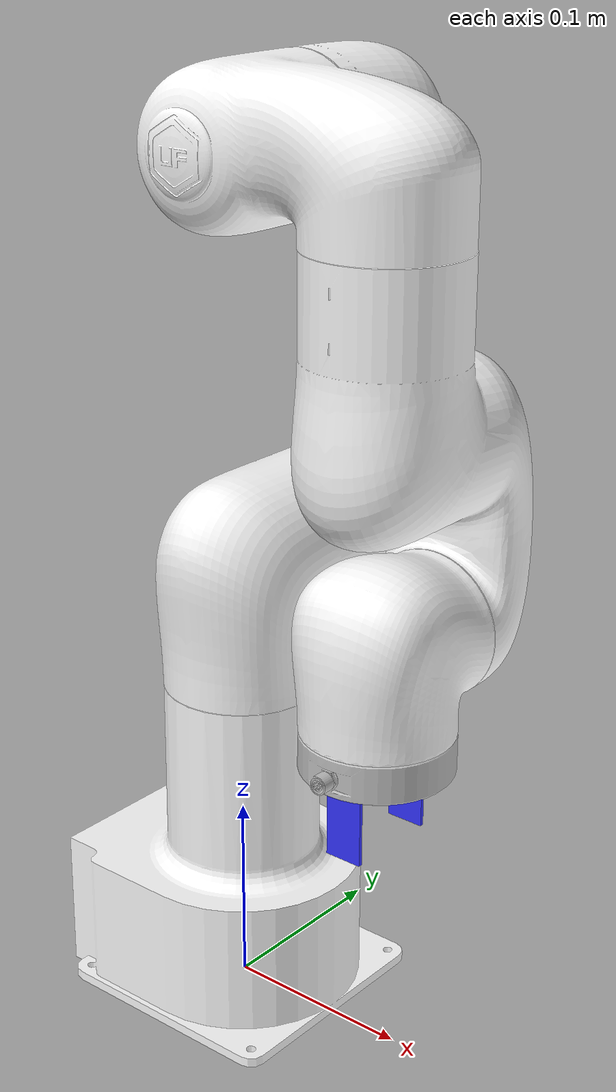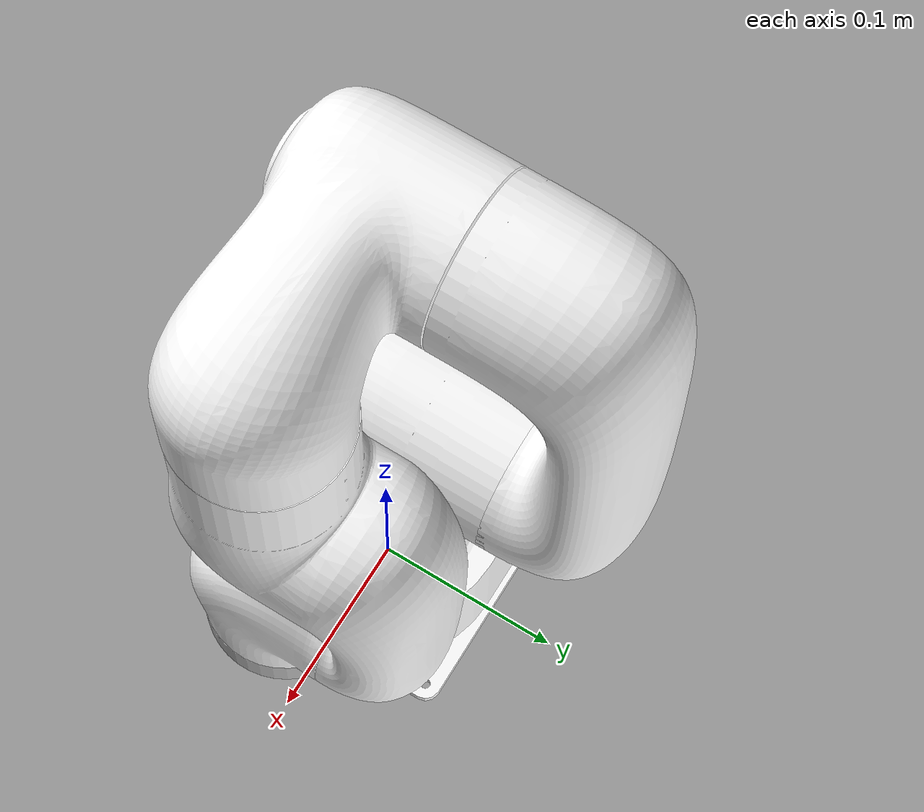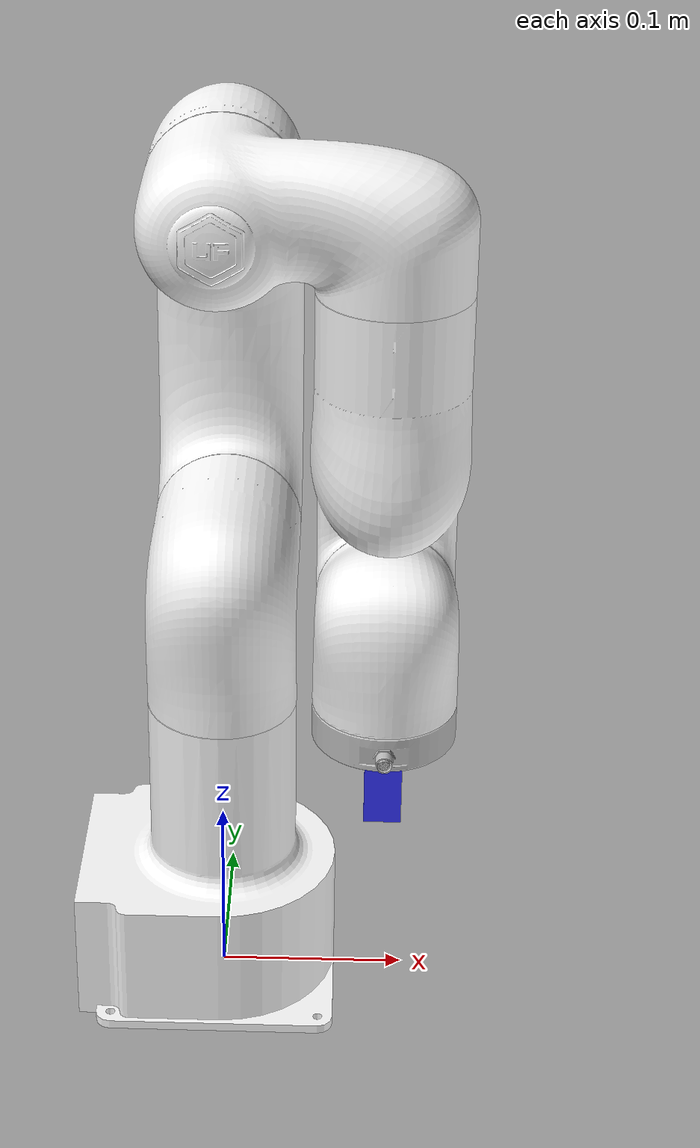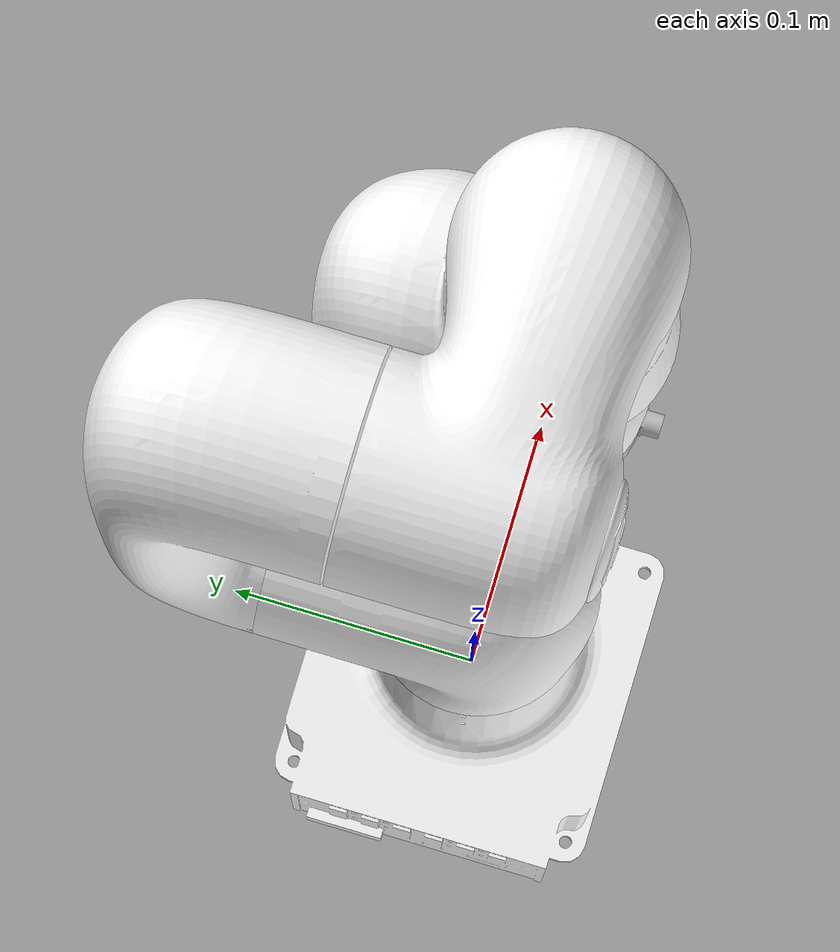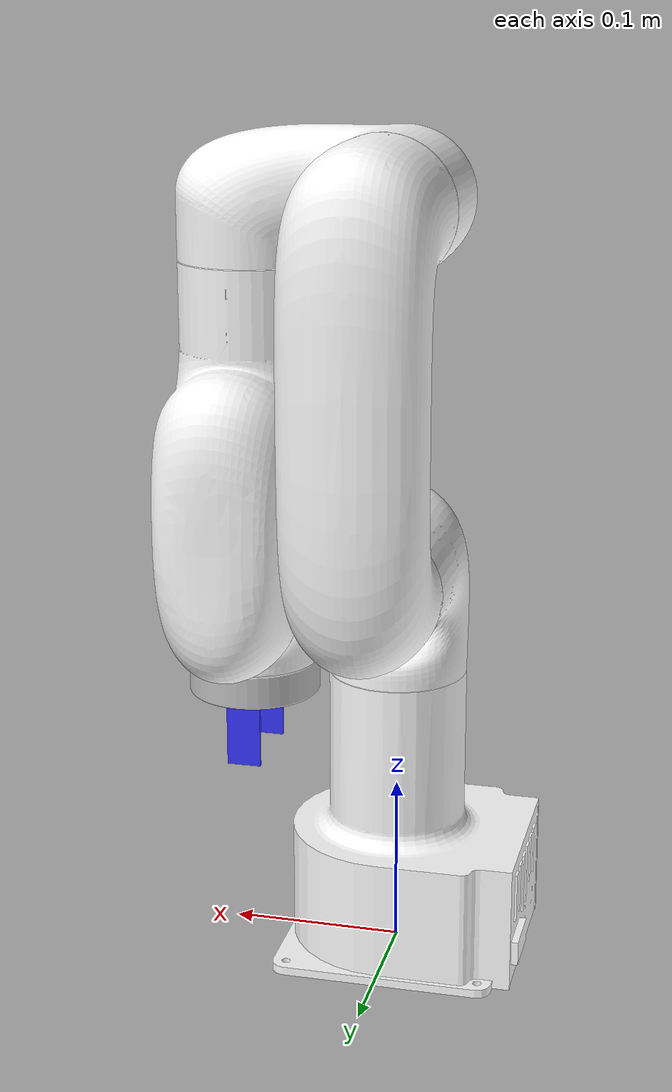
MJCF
<mujoco model="ufactory_lite6">

  <option integrator="implicitfast"/>

  <default>
    <default class="lite6" >
      <geom type="mesh"/>
      <joint axis="0 0 1" damping="1" armature="0.1"/>
      <general gaintype="fixed" biastype="affine" gainprm="2000" biasprm="0 -2000 -200"/>
      <default class="size1">
        <general forcerange="-50 50"/>
      </default>
      <default class="size2">
        <general forcerange="-32 32"/>
      </default>
      <default class="size3">
        <general forcerange="-20 20"/>
      </default>
      <default class="visual">
        <geom contype="0" conaffinity="0" group="2" material="white"/>
      </default>
      <default class="collision">
        <geom group="3" mass="0" density="0"/>
      </default>
      <site size="0.001" rgba="0.5 0.5 0.5 0.3" group="4"/>
    </default>
  </default>

  <asset>
    <material name="white" rgba="1 1 1 1"/>
    <material name="silver" rgba=".753 .753 .753 1"/>

    <mesh file="assets/ufactory_lite6/assets/visual/link_base.stl"/>
    <mesh file="assets/ufactory_lite6/assets/visual/link1.stl"/>
    <mesh file="assets/ufactory_lite6/assets/visual/link2.stl"/>
    <mesh file="assets/ufactory_lite6/assets/visual/link3.stl"/>
    <mesh file="assets/ufactory_lite6/assets/visual/link4.stl"/>
    <mesh file="assets/ufactory_lite6/assets/visual/link5.stl"/>
    <mesh file="assets/ufactory_lite6/assets/visual/link6.stl"/>
    <mesh file="assets/ufactory_lite6/assets/visual/gripper_without_head.stl"/>
    <mesh name="link_base_c"  file="assets/ufactory_lite6/assets/collision/link_base.stl"/>
    <mesh name="link1_c"      file="assets/ufactory_lite6/assets/collision/link1.stl"/>
    <mesh name="link2_c"      file="assets/ufactory_lite6/assets/collision/link2.stl"/>
    <mesh name="link3_c"      file="assets/ufactory_lite6/assets/collision/link3.stl"/>
    <mesh name="link4_c"      file="assets/ufactory_lite6/assets/collision/link4.stl"/>
    <mesh name="link5_c"      file="assets/ufactory_lite6/assets/collision/link5.stl"/>
    <mesh name="link6_c"      file="assets/ufactory_lite6/assets/collision/link6.stl"/>
    <mesh name="gripper_c"    file="assets/ufactory_lite6/assets/collision/gripper_without_head.stl"/>

  </asset>

  <worldbody>
    <body name="link_base" childclass="lite6">
      <inertial pos="-0.00829545 3.26357e-05 0.0631195" mass="1.65394" diaginertia="0 0 0"/>
      <geom class="visual" mesh="link_base"/>
      <geom class="collision" mesh="link_base_c"/>
      <body name="link1" pos="0 0 0.2435">
        <inertial pos="-0.00036 0.04195 -0.0025" quat="0.608059 0.792349 -0.0438707 0.0228718" mass="1.411"
          diaginertia="0.00145276 0.00135275 0.000853355"/>
        <joint name="joint1" /> <!-- range="-6.28319 6.28319"-->
        <geom class="visual" mesh="link1"/>
        <geom class="collision" mesh="link1_c"/>
        <body name="link2" quat="-1 1 1 1">
          <inertial pos="0.179 0 0.0584" quat="0.417561 0.571619 0.569585 0.417693" mass="1.34"
            diaginertia="0.00560971 0.0052152 0.00122018"/>
          <joint name="joint2" /> <!-- range="-2.61799 2.61799" -->
          <geom class="visual" mesh="link2"/>
          <geom class="collision" mesh="link2_c"/>
          <body name="link3" pos="0.2002 0 0" quat="-2.59734e-06 -0.707105 -0.707108 -2.59735e-06">
            <inertial pos="0.072 -0.0357 -0.001" quat="0.128259 0.662963 -0.167256 0.71837" mass="0.953"
              diaginertia="0.0018521 0.00175546 0.000703807"/>
            <joint name="joint3" /> <!--range="-0.061087 5.23599"-->
            <geom class="visual" mesh="link3"/>
            <geom class="collision" mesh="link3_c"/>
            <body name="link4" pos="0.087 -0.22761 0" quat="0.707105 0.707108 0 0">
              <inertial pos="-0.002 -0.0285 -0.0813" quat="0.975248 0.22109 0.00203498 -0.00262178" mass="1.284"
                diaginertia="0.00370503 0.00349091 0.00109586"/>
              <joint name="joint4" /> <!-- range="-6.28319 6.28319"-->
              <geom class="visual" mesh="link4"/>
              <geom class="collision" mesh="link4_c"/>
              <body name="link5" quat="1 1 0 0">
                <inertial pos="0 0.01 0.0019" quat="0.71423 0.696388 -0.0531933 0.0456997" mass="0.804"
                  diaginertia="0.000567553 0.000529266 0.000507681"/>
                <joint name="joint5" /> <!-- range="-2.1642 2.1642" -->
                <geom class="visual" mesh="link5"/>
                <geom class="collision" mesh="link5_c"/>
                <body name="link6" pos="0 0.0625 0" quat="1 -1 0 0">
                  <inertial pos="0 -0.00194 -0.0102" quat="-0.0376023 0.704057 0.0446838 0.707738" mass="0.13"
                    diaginertia="0.000148148 8.57757e-05 7.71412e-05"/>
                  <joint name="joint6" /> <!-- range="-6.28319 6.28319" -->
                  <geom class="visual" mesh="link6" material="silver"/>
                  <geom class="collision" mesh="link6_c"/>

                  <body name="gripper" pos="0 0 0.02" quat="1 0 0 1">
                    <body name="CAM" pos="0 0 -0.025" quat="0 -1 0 1">
                      <camera name="robot_cam" quat="0 1 0 1" pos="0 0 0"/>
                    </body>

                    <body name="gripper_lite_left" pos="0.025 0 0"  quat="0 0 -1 1">
                      <geom type="box" size="0.001 0.02 0.01" rgba=".2 .2 1 1" mass="0.0001"/>
                      <joint name="gripper_lite_left_joint" type="slide" axis="1 0 0" pos="0 0 0" damping="1"/>
                    </body>
                    <body name="gripper_lite_right" pos="-0.025 0 0"  quat="0 0 -1 1">
                      <geom type="box" size="0.001 0.02 0.01" rgba=".2 .2 1 1" mass="0.0001"/>
                      <joint name="gripper_lite_right_joint" type="slide" axis="1 0 0" pos="0 0 0" damping="1"/>
                    </body>

                    <site name="attachment_site"/>
                  </body>
                </body>
              </body>
            </body>
          </body>
        </body>
      </body>
    </body>
  </worldbody>

  <actuator>
    <general joint="joint1" ctrllimited="true" class="size1" ctrlrange="-6.28319 6.28319" />
    <general joint="joint2" ctrllimited="true" class="size1" ctrlrange="-2.61799 2.61799" />
    <general joint="joint3" ctrllimited="true" class="size2" ctrlrange="-0.061087 5.23599" />
    <general joint="joint4" ctrllimited="true" class="size2" ctrlrange="-6.28319 6.28319" />
    <general joint="joint5" ctrllimited="true" class="size2" ctrlrange="-2.1642 2.1642" />
    <general joint="joint6" ctrllimited="true" class="size3" ctrlrange="-6.28319 6.28319" />

    <position name="gripper_lite_left" joint="gripper_lite_left_joint" ctrllimited="true" ctrlrange="0 0.02" kp="12"/>
    <position name="gripper_lite_right" joint="gripper_lite_right_joint" ctrllimited="true" ctrlrange="-0.02 0" kp="12"/>
  </actuator>

</mujoco>
